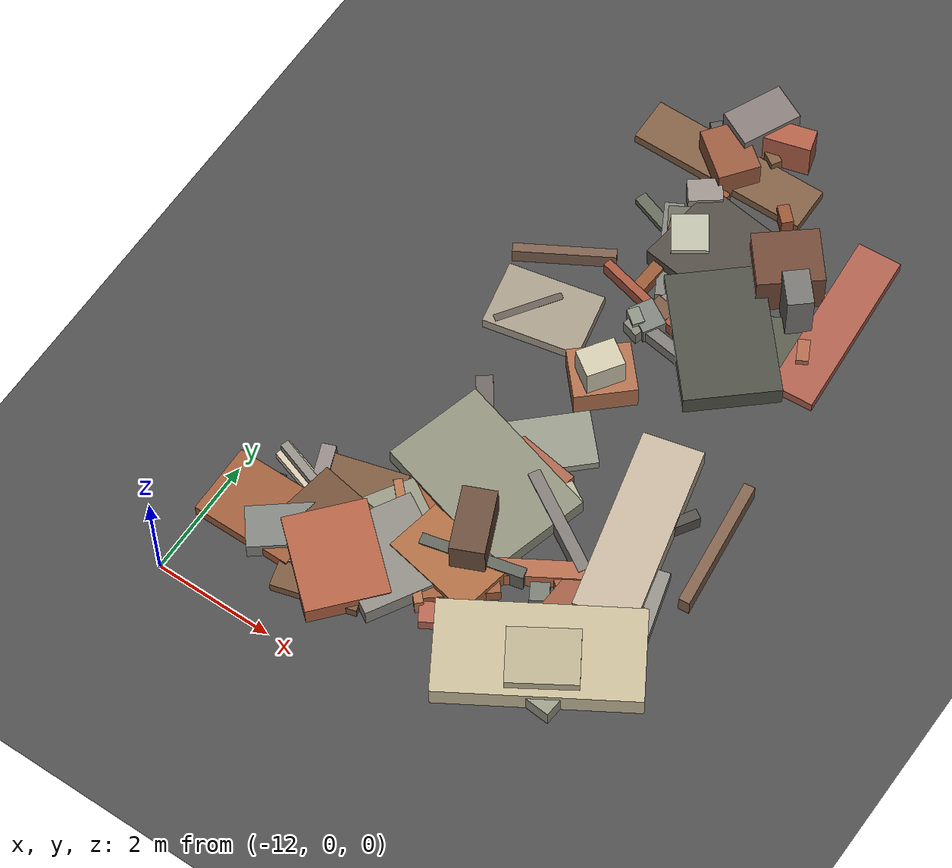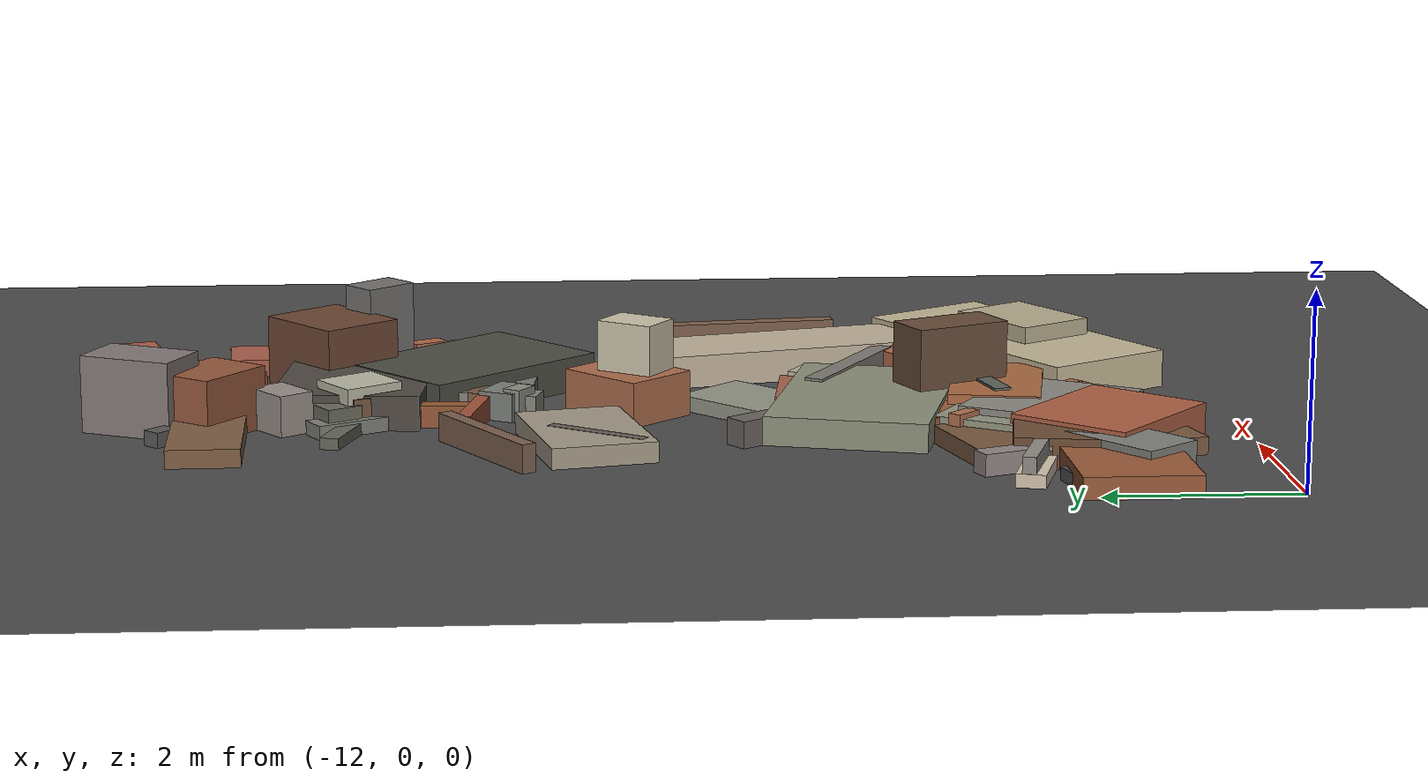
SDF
<sdf version="1.6">
 <world name="navitas_arena">
  <model name="ground_plane">
   <static>true</static>
   <link name="link">
    <collision name="collision">
     <geometry><plane><normal>0 0 1</normal><size>400 400</size></plane></geometry>
     <surface><friction><ode><mu>0.800</mu><mu2>0.800</mu2></ode></friction></surface>
    </collision>
    <visual name="visual">
     <cast_shadows>false</cast_shadows>
     <geometry><plane><normal>0 0 1</normal><size>400 400</size></plane></geometry>
     <material>
      <specular>0.04 0.04 0.04 1</specular>
      <script>
       <uri>file://media/materials/scripts/navitas_asphalt.material</uri>
       <name>Navitas/RealArenaAsphalt</name>
      </script>
     </material>
    </visual>
   </link>
  </model>
  <model name="deb_orta_19">
   <static>true</static>
   <pose>-9.008 5.480 0.000 0 0 0</pose>
   <link name="link">
    <collision name="col_0">
     <pose>0.752 0.780 0.506 0.000 0.000 0.974</pose>
     <geometry><box><size>0.635 0.483 1.012</size></box></geometry>
    </collision>
    <visual name="vis_0">
     <pose>0.752 0.780 0.506 0.000 0.000 0.974</pose>
     <geometry><box><size>0.635 0.483 1.012</size></box></geometry>
     <material>
      <ambient>0.74 0.71 0.62 1</ambient>
      <diffuse>0.80 0.77 0.67 1</diffuse>
      <specular>0.05 0.05 0.045 1</specular>
     </material>
    </visual>
    <collision name="col_1">
     <pose>0.733 0.861 0.239 0.000 0.000 0.738</pose>
     <geometry><box><size>1.006 0.848 0.478</size></box></geometry>
    </collision>
    <visual name="vis_1">
     <pose>0.733 0.861 0.239 0.000 0.000 0.738</pose>
     <geometry><box><size>1.006 0.848 0.478</size></box></geometry>
     <material>
      <ambient>0.63 0.39 0.27 1</ambient>
      <diffuse>0.68 0.43 0.30 1</diffuse>
      <specular>0.05 0.05 0.045 1</specular>
     </material>
    </visual>
    <collision name="col_2">
     <pose>0.558 -0.623 0.082 0.000 0.000 0.755</pose>
     <geometry><box><size>1.760 0.915 0.164</size></box></geometry>
    </collision>
    <visual name="vis_2">
     <pose>0.558 -0.623 0.082 0.000 0.000 0.755</pose>
     <geometry><box><size>1.760 0.915 0.164</size></box></geometry>
     <material>
      <ambient>0.53 0.55 0.49 1</ambient>
      <diffuse>0.58 0.59 0.53 1</diffuse>
      <specular>0.05 0.05 0.045 1</specular>
     </material>
    </visual>
    <collision name="col_3">
     <pose>-0.239 -0.874 0.141 0.000 0.000 2.194</pose>
     <geometry><box><size>1.775 0.268 0.282</size></box></geometry>
    </collision>
    <visual name="vis_3">
     <pose>-0.239 -0.874 0.141 0.000 0.000 2.194</pose>
     <geometry><box><size>1.775 0.268 0.282</size></box></geometry>
     <material>
      <ambient>0.39 0.36 0.35 1</ambient>
      <diffuse>0.42 0.39 0.38 1</diffuse>
      <specular>0.05 0.05 0.045 1</specular>
     </material>
    </visual>
   </link>
  </model>
  <model name="deb_orta_51">
   <static>true</static>
   <pose>-6.276 4.330 0.000 0 0 0</pose>
   <link name="link">
    <collision name="col_0">
     <pose>-1.121 -0.431 0.165 0.000 0.000 2.606</pose>
     <geometry><box><size>1.823 0.203 0.331</size></box></geometry>
    </collision>
    <visual name="vis_0">
     <pose>-1.121 -0.431 0.165 0.000 0.000 2.606</pose>
     <geometry><box><size>1.823 0.203 0.331</size></box></geometry>
     <material>
      <ambient>0.47 0.44 0.43 1</ambient>
      <diffuse>0.50 0.48 0.46 1</diffuse>
      <specular>0.05 0.05 0.045 1</specular>
     </material>
    </visual>
    <collision name="col_1">
     <pose>1.047 0.599 0.164 0.000 0.000 1.687</pose>
     <geometry><box><size>2.196 0.181 0.328</size></box></geometry>
    </collision>
    <visual name="vis_1">
     <pose>1.047 0.599 0.164 0.000 0.000 1.687</pose>
     <geometry><box><size>2.196 0.181 0.328</size></box></geometry>
     <material>
      <ambient>0.46 0.35 0.28 1</ambient>
      <diffuse>0.50 0.38 0.30 1</diffuse>
      <specular>0.05 0.05 0.045 1</specular>
     </material>
    </visual>
    <collision name="col_2">
     <pose>-1.238 0.059 0.143 0.000 0.000 1.033</pose>
     <geometry><box><size>0.222 0.396 0.286</size></box></geometry>
    </collision>
    <visual name="vis_2">
     <pose>-1.238 0.059 0.143 0.000 0.000 1.033</pose>
     <geometry><box><size>0.222 0.396 0.286</size></box></geometry>
     <material>
      <ambient>0.65 0.65 0.56 1</ambient>
      <diffuse>0.70 0.70 0.60 1</diffuse>
      <specular>0.05 0.05 0.045 1</specular>
     </material>
    </visual>
    <collision name="col_3">
     <pose>-0.407 0.443 0.108 0.000 0.000 1.665</pose>
     <geometry><box><size>0.428 0.296 0.217</size></box></geometry>
    </collision>
    <visual name="vis_3">
     <pose>-0.407 0.443 0.108 0.000 0.000 1.665</pose>
     <geometry><box><size>0.428 0.296 0.217</size></box></geometry>
     <material>
      <ambient>0.54 0.54 0.47 1</ambient>
      <diffuse>0.58 0.58 0.50 1</diffuse>
      <specular>0.05 0.05 0.045 1</specular>
     </material>
    </visual>
    <collision name="col_4">
     <pose>-0.062 0.146 0.176 0.000 0.000 1.809</pose>
     <geometry><box><size>3.084 0.998 0.352</size></box></geometry>
    </collision>
    <visual name="vis_4">
     <pose>-0.062 0.146 0.176 0.000 0.000 1.809</pose>
     <geometry><box><size>3.084 0.998 0.352</size></box></geometry>
     <material>
      <ambient>0.70 0.65 0.56 1</ambient>
      <diffuse>0.76 0.70 0.61 1</diffuse>
      <specular>0.05 0.05 0.045 1</specular>
     </material>
    </visual>
    <collision name="col_5">
     <pose>0.300 -1.136 0.090 0.000 0.000 0.869</pose>
     <geometry><box><size>0.515 0.389 0.180</size></box></geometry>
    </collision>
    <visual name="vis_5">
     <pose>0.300 -1.136 0.090 0.000 0.000 0.869</pose>
     <geometry><box><size>0.515 0.389 0.180</size></box></geometry>
     <material>
      <ambient>0.30 0.27 0.26 1</ambient>
      <diffuse>0.33 0.29 0.28 1</diffuse>
      <specular>0.05 0.05 0.045 1</specular>
     </material>
    </visual>
    <collision name="col_6">
     <pose>0.147 0.268 0.143 0.000 0.000 1.006</pose>
     <geometry><box><size>1.427 0.173 0.286</size></box></geometry>
    </collision>
    <visual name="vis_6">
     <pose>0.147 0.268 0.143 0.000 0.000 1.006</pose>
     <geometry><box><size>1.427 0.173 0.286</size></box></geometry>
     <material>
      <ambient>0.30 0.28 0.26 1</ambient>
      <diffuse>0.32 0.30 0.28 1</diffuse>
      <specular>0.05 0.05 0.045 1</specular>
     </material>
    </visual>
   </link>
  </model>
  <model name="deb_orta_60">
   <static>true</static>
   <pose>-8.436 10.395 0.000 0 0 0</pose>
   <link name="link">
    <collision name="col_0">
     <pose>0.424 -1.190 0.185 0.000 0.000 -0.125</pose>
     <geometry><box><size>1.623 1.555 0.370</size></box></geometry>
    </collision>
    <visual name="vis_0">
     <pose>0.424 -1.190 0.185 0.000 0.000 -0.125</pose>
     <geometry><box><size>1.623 1.555 0.370</size></box></geometry>
     <material>
      <ambient>0.29 0.27 0.25 1</ambient>
      <diffuse>0.32 0.29 0.27 1</diffuse>
      <specular>0.05 0.05 0.045 1</specular>
     </material>
    </visual>
    <collision name="col_1">
     <pose>0.919 -0.050 0.165 0.000 0.000 0.806</pose>
     <geometry><box><size>0.195 0.326 0.330</size></box></geometry>
    </collision>
    <visual name="vis_1">
     <pose>0.919 -0.050 0.165 0.000 0.000 0.806</pose>
     <geometry><box><size>0.195 0.326 0.330</size></box></geometry>
     <material>
      <ambient>0.55 0.31 0.19 1</ambient>
      <diffuse>0.59 0.33 0.20 1</diffuse>
      <specular>0.05 0.05 0.045 1</specular>
     </material>
    </visual>
    <collision name="col_2">
     <pose>-0.539 0.424 0.080 0.000 0.000 -0.784</pose>
     <geometry><box><size>1.200 0.201 0.161</size></box></geometry>
    </collision>
    <visual name="vis_2">
     <pose>-0.539 0.424 0.080 0.000 0.000 -0.784</pose>
     <geometry><box><size>1.200 0.201 0.161</size></box></geometry>
     <material>
      <ambient>0.33 0.32 0.32 1</ambient>
      <diffuse>0.36 0.35 0.35 1</diffuse>
      <specular>0.05 0.05 0.045 1</specular>
     </material>
    </visual>
    <collision name="col_3">
     <pose>-0.327 -0.448 0.216 0.000 0.000 0.641</pose>
     <geometry><box><size>0.556 0.400 0.432</size></box></geometry>
    </collision>
    <visual name="vis_3">
     <pose>-0.327 -0.448 0.216 0.000 0.000 0.641</pose>
     <geometry><box><size>0.556 0.400 0.432</size></box></geometry>
     <material>
      <ambient>0.55 0.52 0.50 1</ambient>
      <diffuse>0.60 0.56 0.54 1</diffuse>
      <specular>0.05 0.05 0.045 1</specular>
     </material>
    </visual>
    <collision name="col_4">
     <pose>-0.359 0.286 0.096 0.000 0.000 0.015</pose>
     <geometry><box><size>3.038 0.751 0.191</size></box></geometry>
    </collision>
    <visual name="vis_4">
     <pose>-0.359 0.286 0.096 0.000 0.000 0.015</pose>
     <geometry><box><size>3.038 0.751 0.191</size></box></geometry>
     <material>
      <ambient>0.47 0.35 0.25 1</ambient>
      <diffuse>0.50 0.37 0.27 1</diffuse>
      <specular>0.05 0.05 0.045 1</specular>
     </material>
    </visual>
    <collision name="col_5">
     <pose>0.190 0.723 0.164 0.000 0.000 1.027</pose>
     <geometry><box><size>0.184 0.260 0.328</size></box></geometry>
    </collision>
    <visual name="vis_5">
     <pose>0.190 0.723 0.164 0.000 0.000 1.027</pose>
     <geometry><box><size>0.184 0.260 0.328</size></box></geometry>
     <material>
      <ambient>0.45 0.34 0.23 1</ambient>
      <diffuse>0.49 0.36 0.25 1</diffuse>
      <specular>0.05 0.05 0.045 1</specular>
     </material>
    </visual>
   </link>
  </model>
  <model name="deb_orta_70">
   <static>true</static>
   <pose>-6.949 2.322 0.000 0 0 0</pose>
   <link name="link">
    <collision name="col_0">
     <pose>0.006 0.902 0.160 0.000 0.000 0.546</pose>
     <geometry><box><size>2.242 0.294 0.320</size></box></geometry>
    </collision>
    <visual name="vis_0">
     <pose>0.006 0.902 0.160 0.000 0.000 0.546</pose>
     <geometry><box><size>2.242 0.294 0.320</size></box></geometry>
     <material>
      <ambient>0.65 0.39 0.28 1</ambient>
      <diffuse>0.70 0.42 0.30 1</diffuse>
      <specular>0.05 0.05 0.045 1</specular>
     </material>
    </visual>
    <collision name="col_1">
     <pose>0.489 0.696 0.104 0.000 0.000 1.872</pose>
     <geometry><box><size>0.409 0.210 0.208</size></box></geometry>
    </collision>
    <visual name="vis_1">
     <pose>0.489 0.696 0.104 0.000 0.000 1.872</pose>
     <geometry><box><size>0.409 0.210 0.208</size></box></geometry>
     <material>
      <ambient>0.61 0.35 0.22 1</ambient>
      <diffuse>0.65 0.38 0.24 1</diffuse>
      <specular>0.05 0.05 0.045 1</specular>
     </material>
    </visual>
    <collision name="col_2">
     <pose>0.934 -0.062 0.161 0.000 0.000 1.492</pose>
     <geometry><box><size>2.135 0.735 0.322</size></box></geometry>
    </collision>
    <visual name="vis_2">
     <pose>0.934 -0.062 0.161 0.000 0.000 1.492</pose>
     <geometry><box><size>2.135 0.735 0.322</size></box></geometry>
     <material>
      <ambient>0.55 0.56 0.49 1</ambient>
      <diffuse>0.60 0.60 0.53 1</diffuse>
      <specular>0.05 0.05 0.045 1</specular>
     </material>
    </visual>
    <collision name="col_3">
     <pose>0.071 0.823 0.135 0.000 0.000 0.898</pose>
     <geometry><box><size>0.195 0.269 0.270</size></box></geometry>
    </collision>
    <visual name="vis_3">
     <pose>0.071 0.823 0.135 0.000 0.000 0.898</pose>
     <geometry><box><size>0.195 0.269 0.270</size></box></geometry>
     <material>
      <ambient>0.61 0.36 0.26 1</ambient>
      <diffuse>0.65 0.39 0.28 1</diffuse>
      <specular>0.05 0.05 0.045 1</specular>
     </material>
    </visual>
    <collision name="col_4">
     <pose>0.688 -0.504 0.294 0.000 0.000 0.562</pose>
     <geometry><box><size>1.128 0.917 0.588</size></box></geometry>
    </collision>
    <visual name="vis_4">
     <pose>0.688 -0.504 0.294 0.000 0.000 0.562</pose>
     <geometry><box><size>1.128 0.917 0.588</size></box></geometry>
     <material>
      <ambient>0.66 0.63 0.52 1</ambient>
      <diffuse>0.72 0.68 0.56 1</diffuse>
      <specular>0.05 0.05 0.045 1</specular>
     </material>
    </visual>
    <collision name="col_5">
     <pose>0.447 0.265 0.095 0.000 0.000 0.921</pose>
     <geometry><box><size>1.011 0.318 0.190</size></box></geometry>
    </collision>
    <visual name="vis_5">
     <pose>0.447 0.265 0.095 0.000 0.000 0.921</pose>
     <geometry><box><size>1.011 0.318 0.190</size></box></geometry>
     <material>
      <ambient>0.76 0.69 0.62 1</ambient>
      <diffuse>0.82 0.74 0.67 1</diffuse>
      <specular>0.05 0.05 0.045 1</specular>
     </material>
    </visual>
   </link>
  </model>
  <model name="deb_orta_114">
   <static>true</static>
   <pose>-8.352 2.006 0.000 0 0 0</pose>
   <link name="link">
    <collision name="col_0">
     <pose>0.166 -0.439 0.114 0.000 0.000 2.095</pose>
     <geometry><box><size>0.344 0.253 0.229</size></box></geometry>
    </collision>
    <visual name="vis_0">
     <pose>0.166 -0.439 0.114 0.000 0.000 2.095</pose>
     <geometry><box><size>0.344 0.253 0.229</size></box></geometry>
     <material>
      <ambient>0.65 0.36 0.29 1</ambient>
      <diffuse>0.70 0.39 0.31 1</diffuse>
      <specular>0.05 0.05 0.045 1</specular>
     </material>
    </visual>
    <collision name="col_1">
     <pose>-0.855 -0.007 0.166 0.000 0.000 1.045</pose>
     <geometry><box><size>1.452 1.559 0.332</size></box></geometry>
    </collision>
    <visual name="vis_1">
     <pose>-0.855 -0.007 0.166 0.000 0.000 1.045</pose>
     <geometry><box><size>1.452 1.559 0.332</size></box></geometry>
     <material>
      <ambient>0.51 0.50 0.47 1</ambient>
      <diffuse>0.55 0.54 0.51 1</diffuse>
      <specular>0.05 0.05 0.045 1</specular>
     </material>
    </visual>
    <collision name="col_2">
     <pose>-0.050 0.443 0.175 0.000 0.000 -0.185</pose>
     <geometry><box><size>1.562 0.960 0.350</size></box></geometry>
    </collision>
    <visual name="vis_2">
     <pose>-0.050 0.443 0.175 0.000 0.000 -0.185</pose>
     <geometry><box><size>1.562 0.960 0.350</size></box></geometry>
     <material>
      <ambient>0.62 0.39 0.24 1</ambient>
      <diffuse>0.67 0.42 0.26 1</diffuse>
      <specular>0.05 0.05 0.045 1</specular>
     </material>
    </visual>
    <collision name="col_3">
     <pose>0.234 0.656 0.187 0.000 0.000 0.238</pose>
     <geometry><box><size>1.679 0.183 0.374</size></box></geometry>
    </collision>
    <visual name="vis_3">
     <pose>0.234 0.656 0.187 0.000 0.000 0.238</pose>
     <geometry><box><size>1.679 0.183 0.374</size></box></geometry>
     <material>
      <ambient>0.35 0.36 0.34 1</ambient>
      <diffuse>0.38 0.39 0.36 1</diffuse>
      <specular>0.05 0.05 0.045 1</specular>
     </material>
    </visual>
   </link>
  </model>
  <model name="deb_orta_139">
   <static>true</static>
   <pose>-6.398 2.438 0.000 0 0 0</pose>
   <link name="link">
    <collision name="col_0">
     <pose>-0.636 0.420 0.077 0.000 0.000 2.101</pose>
     <geometry><box><size>0.386 0.303 0.154</size></box></geometry>
    </collision>
    <visual name="vis_0">
     <pose>-0.636 0.420 0.077 0.000 0.000 2.101</pose>
     <geometry><box><size>0.386 0.303 0.154</size></box></geometry>
     <material>
      <ambient>0.43 0.45 0.41 1</ambient>
      <diffuse>0.46 0.48 0.44 1</diffuse>
      <specular>0.05 0.05 0.045 1</specular>
     </material>
    </visual>
    <collision name="col_1">
     <pose>-0.235 0.621 0.138 0.000 0.000 1.406</pose>
     <geometry><box><size>0.242 0.310 0.276</size></box></geometry>
    </collision>
    <visual name="vis_1">
     <pose>-0.235 0.621 0.138 0.000 0.000 1.406</pose>
     <geometry><box><size>0.242 0.310 0.276</size></box></geometry>
     <material>
      <ambient>0.63 0.40 0.27 1</ambient>
      <diffuse>0.69 0.44 0.30 1</diffuse>
      <specular>0.05 0.05 0.045 1</specular>
     </material>
    </visual>
    <collision name="col_2">
     <pose>1.005 0.794 0.110 0.000 0.000 1.850</pose>
     <geometry><box><size>1.870 0.219 0.220</size></box></geometry>
    </collision>
    <visual name="vis_2">
     <pose>1.005 0.794 0.110 0.000 0.000 1.850</pose>
     <geometry><box><size>1.870 0.219 0.220</size></box></geometry>
     <material>
      <ambient>0.52 0.51 0.48 1</ambient>
      <diffuse>0.56 0.55 0.52 1</diffuse>
      <specular>0.05 0.05 0.045 1</specular>
     </material>
    </visual>
    <collision name="col_3">
     <pose>0.192 0.108 0.144 0.000 0.000 1.524</pose>
     <geometry><box><size>1.838 1.272 0.288</size></box></geometry>
    </collision>
    <visual name="vis_3">
     <pose>0.192 0.108 0.144 0.000 0.000 1.524</pose>
     <geometry><box><size>1.838 1.272 0.288</size></box></geometry>
     <material>
      <ambient>0.57 0.34 0.24 1</ambient>
      <diffuse>0.61 0.36 0.26 1</diffuse>
      <specular>0.05 0.05 0.045 1</specular>
     </material>
    </visual>
    <collision name="col_4">
     <pose>-0.009 -0.503 0.204 0.000 0.000 0.546</pose>
     <geometry><box><size>3.185 1.524 0.407</size></box></geometry>
    </collision>
    <visual name="vis_4">
     <pose>-0.009 -0.503 0.204 0.000 0.000 0.546</pose>
     <geometry><box><size>3.185 1.524 0.407</size></box></geometry>
     <material>
      <ambient>0.71 0.67 0.55 1</ambient>
      <diffuse>0.77 0.72 0.59 1</diffuse>
      <specular>0.05 0.05 0.045 1</specular>
     </material>
    </visual>
   </link>
  </model>
  <model name="deb_orta_141">
   <static>true</static>
   <pose>-6.434 8.853 0.000 0 0 0</pose>
   <link name="link">
    <collision name="col_0">
     <pose>-0.446 0.542 0.151 0.000 0.000 3.110</pose>
     <geometry><box><size>0.470 0.406 0.302</size></box></geometry>
    </collision>
    <visual name="vis_0">
     <pose>-0.446 0.542 0.151 0.000 0.000 3.110</pose>
     <geometry><box><size>0.470 0.406 0.302</size></box></geometry>
     <material>
      <ambient>0.69 0.63 0.58 1</ambient>
      <diffuse>0.74 0.68 0.62 1</diffuse>
      <specular>0.05 0.05 0.045 1</specular>
     </material>
    </visual>
    <collision name="col_1">
     <pose>-0.021 -0.488 0.085 0.000 0.000 3.681</pose>
     <geometry><box><size>1.582 0.935 0.169</size></box></geometry>
    </collision>
    <visual name="vis_1">
     <pose>-0.021 -0.488 0.085 0.000 0.000 3.681</pose>
     <geometry><box><size>1.582 0.935 0.169</size></box></geometry>
     <material>
      <ambient>0.32 0.32 0.27 1</ambient>
      <diffuse>0.34 0.35 0.29 1</diffuse>
      <specular>0.05 0.05 0.045 1</specular>
     </material>
    </visual>
    <collision name="col_2">
     <pose>0.264 0.692 0.084 0.000 0.000 2.875</pose>
     <geometry><box><size>0.181 0.250 0.168</size></box></geometry>
    </collision>
    <visual name="vis_2">
     <pose>0.264 0.692 0.084 0.000 0.000 2.875</pose>
     <geometry><box><size>0.181 0.250 0.168</size></box></geometry>
     <material>
      <ambient>0.63 0.35 0.25 1</ambient>
      <diffuse>0.69 0.38 0.27 1</diffuse>
      <specular>0.05 0.05 0.045 1</specular>
     </material>
    </visual>
    <collision name="col_3">
     <pose>-0.494 0.618 0.398 0.000 0.000 3.825</pose>
     <geometry><box><size>1.079 0.930 0.796</size></box></geometry>
    </collision>
    <visual name="vis_3">
     <pose>-0.494 0.618 0.398 0.000 0.000 3.825</pose>
     <geometry><box><size>1.079 0.930 0.796</size></box></geometry>
     <material>
      <ambient>0.40 0.26 0.19 1</ambient>
      <diffuse>0.43 0.28 0.21 1</diffuse>
      <specular>0.05 0.05 0.045 1</specular>
     </material>
    </visual>
    <collision name="col_4">
     <pose>0.001 0.115 0.532 0.000 0.000 2.281</pose>
     <geometry><box><size>0.608 0.419 1.064</size></box></geometry>
    </collision>
    <visual name="vis_4">
     <pose>0.001 0.115 0.532 0.000 0.000 2.281</pose>
     <geometry><box><size>0.608 0.419 1.064</size></box></geometry>
     <material>
      <ambient>0.43 0.42 0.41 1</ambient>
      <diffuse>0.46 0.45 0.44 1</diffuse>
      <specular>0.05 0.05 0.045 1</specular>
     </material>
    </visual>
    <collision name="col_5">
     <pose>0.599 0.342 0.096 0.000 0.000 1.643</pose>
     <geometry><box><size>2.895 0.735 0.193</size></box></geometry>
    </collision>
    <visual name="vis_5">
     <pose>0.599 0.342 0.096 0.000 0.000 1.643</pose>
     <geometry><box><size>2.895 0.735 0.193</size></box></geometry>
     <material>
      <ambient>0.62 0.35 0.27 1</ambient>
      <diffuse>0.67 0.37 0.30 1</diffuse>
      <specular>0.05 0.05 0.045 1</specular>
     </material>
    </visual>
    <collision name="col_6">
     <pose>0.468 -0.396 0.155 0.000 0.000 3.625</pose>
     <geometry><box><size>0.195 0.378 0.309</size></box></geometry>
    </collision>
    <visual name="vis_6">
     <pose>0.468 -0.396 0.155 0.000 0.000 3.625</pose>
     <geometry><box><size>0.195 0.378 0.309</size></box></geometry>
     <material>
      <ambient>0.63 0.38 0.28 1</ambient>
      <diffuse>0.68 0.41 0.30 1</diffuse>
      <specular>0.05 0.05 0.045 1</specular>
     </material>
    </visual>
   </link>
  </model>
  <model name="deb_orta_142">
   <static>true</static>
   <pose>-9.919 1.536 0.000 0 0 0</pose>
   <link name="link">
    <collision name="col_0">
     <pose>-0.148 0.423 0.094 0.000 0.000 1.847</pose>
     <geometry><box><size>2.404 1.385 0.188</size></box></geometry>
    </collision>
    <visual name="vis_0">
     <pose>-0.148 0.423 0.094 0.000 0.000 1.847</pose>
     <geometry><box><size>2.404 1.385 0.188</size></box></geometry>
     <material>
      <ambient>0.44 0.33 0.23 1</ambient>
      <diffuse>0.48 0.35 0.25 1</diffuse>
      <specular>0.05 0.05 0.045 1</specular>
     </material>
    </visual>
    <collision name="col_1">
     <pose>-0.608 0.168 0.155 0.000 0.000 3.810</pose>
     <geometry><box><size>1.811 0.697 0.310</size></box></geometry>
    </collision>
    <visual name="vis_1">
     <pose>-0.608 0.168 0.155 0.000 0.000 3.810</pose>
     <geometry><box><size>1.811 0.697 0.310</size></box></geometry>
     <material>
      <ambient>0.46 0.47 0.45 1</ambient>
      <diffuse>0.50 0.51 0.49 1</diffuse>
      <specular>0.05 0.05 0.045 1</specular>
     </material>
    </visual>
    <collision name="col_2">
     <pose>0.099 -0.018 0.179 0.000 0.000 2.424</pose>
     <geometry><box><size>1.631 1.330 0.357</size></box></geometry>
    </collision>
    <visual name="vis_2">
     <pose>0.099 -0.018 0.179 0.000 0.000 2.424</pose>
     <geometry><box><size>1.631 1.330 0.357</size></box></geometry>
     <material>
      <ambient>0.64 0.35 0.25 1</ambient>
      <diffuse>0.69 0.38 0.27 1</diffuse>
      <specular>0.05 0.05 0.045 1</specular>
     </material>
    </visual>
    <collision name="col_3">
     <pose>0.656 0.822 0.130 0.000 0.000 2.586</pose>
     <geometry><box><size>1.622 1.186 0.259</size></box></geometry>
    </collision>
    <visual name="vis_3">
     <pose>0.656 0.822 0.130 0.000 0.000 2.586</pose>
     <geometry><box><size>1.622 1.186 0.259</size></box></geometry>
     <material>
      <ambient>0.54 0.54 0.47 1</ambient>
      <diffuse>0.58 0.58 0.51 1</diffuse>
      <specular>0.05 0.05 0.045 1</specular>
     </material>
    </visual>
    <collision name="col_4">
     <pose>0.841 0.807 0.158 0.000 0.000 2.339</pose>
     <geometry><box><size>2.108 0.142 0.315</size></box></geometry>
    </collision>
    <visual name="vis_4">
     <pose>0.841 0.807 0.158 0.000 0.000 2.339</pose>
     <geometry><box><size>2.108 0.142 0.315</size></box></geometry>
     <material>
      <ambient>0.65 0.42 0.29 1</ambient>
      <diffuse>0.70 0.45 0.31 1</diffuse>
      <specular>0.05 0.05 0.045 1</specular>
     </material>
    </visual>
    <collision name="col_5">
     <pose>-0.749 0.536 0.114 0.000 0.000 1.944</pose>
     <geometry><box><size>2.053 0.234 0.228</size></box></geometry>
    </collision>
    <visual name="vis_5">
     <pose>-0.749 0.536 0.114 0.000 0.000 1.944</pose>
     <geometry><box><size>2.053 0.234 0.228</size></box></geometry>
     <material>
      <ambient>0.52 0.50 0.48 1</ambient>
      <diffuse>0.57 0.53 0.52 1</diffuse>
      <specular>0.05 0.05 0.045 1</specular>
     </material>
    </visual>
   </link>
  </model>
  <model name="deb_orta_155">
   <static>true</static>
   <pose>-8.483 3.498 0.000 0 0 0</pose>
   <link name="link">
    <collision name="col_0">
     <pose>0.203 -0.569 0.478 0.000 0.000 1.987</pose>
     <geometry><box><size>1.067 0.551 0.955</size></box></geometry>
    </collision>
    <visual name="vis_0">
     <pose>0.203 -0.569 0.478 0.000 0.000 1.987</pose>
     <geometry><box><size>1.067 0.551 0.955</size></box></geometry>
     <material>
      <ambient>0.38 0.27 0.21 1</ambient>
      <diffuse>0.41 0.30 0.23 1</diffuse>
      <specular>0.05 0.05 0.045 1</specular>
     </material>
    </visual>
    <collision name="col_1">
     <pose>-0.252 0.394 0.151 0.000 0.000 -0.270</pose>
     <geometry><box><size>2.547 1.693 0.302</size></box></geometry>
    </collision>
    <visual name="vis_1">
     <pose>-0.252 0.394 0.151 0.000 0.000 -0.270</pose>
     <geometry><box><size>2.547 1.693 0.302</size></box></geometry>
     <material>
      <ambient>0.51 0.51 0.45 1</ambient>
      <diffuse>0.55 0.56 0.48 1</diffuse>
      <specular>0.05 0.05 0.045 1</specular>
     </material>
    </visual>
    <collision name="col_2">
     <pose>-0.445 -0.304 0.066 0.000 0.000 0.415</pose>
     <geometry><box><size>1.003 0.298 0.133</size></box></geometry>
    </collision>
    <visual name="vis_2">
     <pose>-0.445 -0.304 0.066 0.000 0.000 0.415</pose>
     <geometry><box><size>1.003 0.298 0.133</size></box></geometry>
     <material>
      <ambient>0.37 0.28 0.17 1</ambient>
      <diffuse>0.40 0.30 0.18 1</diffuse>
      <specular>0.05 0.05 0.045 1</specular>
     </material>
    </visual>
    <collision name="col_3">
     <pose>0.144 0.071 0.124 0.000 0.000 1.425</pose>
     <geometry><box><size>2.383 1.031 0.249</size></box></geometry>
    </collision>
    <visual name="vis_3">
     <pose>0.144 0.071 0.124 0.000 0.000 1.425</pose>
     <geometry><box><size>2.383 1.031 0.249</size></box></geometry>
     <material>
      <ambient>0.60 0.36 0.28 1</ambient>
      <diffuse>0.65 0.39 0.30 1</diffuse>
      <specular>0.05 0.05 0.045 1</specular>
     </material>
    </visual>
    <collision name="col_4">
     <pose>-0.124 -0.607 0.124 0.000 0.000 2.260</pose>
     <geometry><box><size>2.141 1.211 0.248</size></box></geometry>
    </collision>
    <visual name="vis_4">
     <pose>-0.124 -0.607 0.124 0.000 0.000 2.260</pose>
     <geometry><box><size>2.141 1.211 0.248</size></box></geometry>
     <material>
      <ambient>0.57 0.35 0.21 1</ambient>
      <diffuse>0.62 0.37 0.23 1</diffuse>
      <specular>0.05 0.05 0.045 1</specular>
     </material>
    </visual>
   </link>
  </model>
  <model name="deb_orta_172">
   <static>true</static>
   <pose>-7.791 8.077 0.000 0 0 0</pose>
   <link name="link">
    <collision name="col_0">
     <pose>0.654 -0.090 0.189 0.000 0.000 2.290</pose>
     <geometry><box><size>2.231 1.544 0.377</size></box></geometry>
    </collision>
    <visual name="vis_0">
     <pose>0.654 -0.090 0.189 0.000 0.000 2.290</pose>
     <geometry><box><size>2.231 1.544 0.377</size></box></geometry>
     <material>
      <ambient>0.28 0.28 0.25 1</ambient>
      <diffuse>0.30 0.31 0.27 1</diffuse>
      <specular>0.05 0.05 0.045 1</specular>
     </material>
    </visual>
    <collision name="col_1">
     <pose>-0.288 0.188 0.130 0.000 0.000 1.264</pose>
     <geometry><box><size>2.082 0.300 0.259</size></box></geometry>
    </collision>
    <visual name="vis_1">
     <pose>-0.288 0.188 0.130 0.000 0.000 1.264</pose>
     <geometry><box><size>2.082 0.300 0.259</size></box></geometry>
     <material>
      <ambient>0.48 0.48 0.45 1</ambient>
      <diffuse>0.52 0.52 0.48 1</diffuse>
      <specular>0.05 0.05 0.045 1</specular>
     </material>
    </visual>
    <collision name="col_2">
     <pose>0.490 -0.562 0.169 0.000 0.000 1.205</pose>
     <geometry><box><size>0.263 0.382 0.338</size></box></geometry>
    </collision>
    <visual name="vis_2">
     <pose>0.490 -0.562 0.169 0.000 0.000 1.205</pose>
     <geometry><box><size>0.263 0.382 0.338</size></box></geometry>
     <material>
      <ambient>0.71 0.65 0.56 1</ambient>
      <diffuse>0.77 0.71 0.61 1</diffuse>
      <specular>0.05 0.05 0.045 1</specular>
     </material>
    </visual>
    <collision name="col_3">
     <pose>-0.493 -0.463 0.151 0.000 0.000 2.617</pose>
     <geometry><box><size>0.497 0.398 0.302</size></box></geometry>
    </collision>
    <visual name="vis_3">
     <pose>-0.493 -0.463 0.151 0.000 0.000 2.617</pose>
     <geometry><box><size>0.497 0.398 0.302</size></box></geometry>
     <material>
      <ambient>0.45 0.46 0.45 1</ambient>
      <diffuse>0.49 0.50 0.48 1</diffuse>
      <specular>0.05 0.05 0.045 1</specular>
     </material>
    </visual>
    <collision name="col_4">
     <pose>-0.402 -0.283 0.133 0.000 0.000 3.003</pose>
     <geometry><box><size>0.371 0.424 0.267</size></box></geometry>
    </collision>
    <visual name="vis_4">
     <pose>-0.402 -0.283 0.133 0.000 0.000 3.003</pose>
     <geometry><box><size>0.371 0.424 0.267</size></box></geometry>
     <material>
      <ambient>0.44 0.32 0.24 1</ambient>
      <diffuse>0.47 0.35 0.26 1</diffuse>
      <specular>0.05 0.05 0.045 1</specular>
     </material>
    </visual>
    <collision name="col_5">
     <pose>-0.528 -0.242 0.129 0.000 0.000 2.913</pose>
     <geometry><box><size>2.117 0.142 0.257</size></box></geometry>
    </collision>
    <visual name="vis_5">
     <pose>-0.528 -0.242 0.129 0.000 0.000 2.913</pose>
     <geometry><box><size>2.117 0.142 0.257</size></box></geometry>
     <material>
      <ambient>0.59 0.30 0.23 1</ambient>
      <diffuse>0.64 0.33 0.24 1</diffuse>
      <specular>0.05 0.05 0.045 1</specular>
     </material>
    </visual>
    <collision name="col_6">
     <pose>0.315 -0.715 0.124 0.000 0.000 3.007</pose>
     <geometry><box><size>1.824 0.198 0.248</size></box></geometry>
    </collision>
    <visual name="vis_6">
     <pose>0.315 -0.715 0.124 0.000 0.000 3.007</pose>
     <geometry><box><size>1.824 0.198 0.248</size></box></geometry>
     <material>
      <ambient>0.45 0.44 0.42 1</ambient>
      <diffuse>0.49 0.48 0.46 1</diffuse>
      <specular>0.05 0.05 0.045 1</specular>
     </material>
    </visual>
   </link>
  </model>
  <model name="deb_orta_208">
   <static>true</static>
   <pose>-8.743 11.285 0.000 0 0 0</pose>
   <link name="link">
    <collision name="col_0">
     <pose>0.406 0.346 0.119 0.000 0.000 0.912</pose>
     <geometry><box><size>0.187 0.417 0.238</size></box></geometry>
    </collision>
    <visual name="vis_0">
     <pose>0.406 0.346 0.119 0.000 0.000 0.912</pose>
     <geometry><box><size>0.187 0.417 0.238</size></box></geometry>
     <material>
      <ambient>0.45 0.32 0.26 1</ambient>
      <diffuse>0.48 0.35 0.28 1</diffuse>
      <specular>0.05 0.05 0.045 1</specular>
     </material>
    </visual>
    <collision name="col_1">
     <pose>0.076 0.115 0.407 0.000 0.000 1.129</pose>
     <geometry><box><size>1.022 0.644 0.814</size></box></geometry>
    </collision>
    <visual name="vis_1">
     <pose>0.076 0.115 0.407 0.000 0.000 1.129</pose>
     <geometry><box><size>1.022 0.644 0.814</size></box></geometry>
     <material>
      <ambient>0.48 0.45 0.43 1</ambient>
      <diffuse>0.52 0.48 0.47 1</diffuse>
      <specular>0.05 0.05 0.045 1</specular>
     </material>
    </visual>
    <collision name="col_2">
     <pose>0.518 0.085 0.364 0.000 0.000 3.418</pose>
     <geometry><box><size>0.979 0.382 0.727</size></box></geometry>
    </collision>
    <visual name="vis_2">
     <pose>0.518 0.085 0.364 0.000 0.000 3.418</pose>
     <geometry><box><size>0.979 0.382 0.727</size></box></geometry>
     <material>
      <ambient>0.63 0.34 0.26 1</ambient>
      <diffuse>0.68 0.37 0.28 1</diffuse>
      <specular>0.05 0.05 0.045 1</specular>
     </material>
    </visual>
    <collision name="col_3">
     <pose>-0.033 -0.614 0.330 0.000 0.000 2.489</pose>
     <geometry><box><size>0.904 0.698 0.660</size></box></geometry>
    </collision>
    <visual name="vis_3">
     <pose>-0.033 -0.614 0.330 0.000 0.000 2.489</pose>
     <geometry><box><size>0.904 0.698 0.660</size></box></geometry>
     <material>
      <ambient>0.54 0.33 0.22 1</ambient>
      <diffuse>0.59 0.35 0.24 1</diffuse>
      <specular>0.05 0.05 0.045 1</specular>
     </material>
    </visual>
   </link>
  </model>
  <model name="deb_orta_229">
   <static>true</static>
   <pose>-9.416 7.488 0.000 0 0 0</pose>
   <link name="link">
    <collision name="col_0">
     <pose>0.994 0.001 0.170 0.000 0.000 0.937</pose>
     <geometry><box><size>0.199 0.285 0.340</size></box></geometry>
    </collision>
    <visual name="vis_0">
     <pose>0.994 0.001 0.170 0.000 0.000 0.937</pose>
     <geometry><box><size>0.199 0.285 0.340</size></box></geometry>
     <material>
      <ambient>0.50 0.52 0.47 1</ambient>
      <diffuse>0.54 0.56 0.51 1</diffuse>
      <specular>0.05 0.05 0.045 1</specular>
     </material>
    </visual>
    <collision name="col_1">
     <pose>-0.500 -0.757 0.110 0.000 0.000 0.965</pose>
     <geometry><box><size>1.130 0.122 0.221</size></box></geometry>
    </collision>
    <visual name="vis_1">
     <pose>-0.500 -0.757 0.110 0.000 0.000 0.965</pose>
     <geometry><box><size>1.130 0.122 0.221</size></box></geometry>
     <material>
      <ambient>0.37 0.34 0.32 1</ambient>
      <diffuse>0.40 0.37 0.34 1</diffuse>
      <specular>0.05 0.05 0.045 1</specular>
     </material>
    </visual>
    <collision name="col_2">
     <pose>-0.585 0.366 0.149 0.000 0.000 0.528</pose>
     <geometry><box><size>1.634 0.154 0.297</size></box></geometry>
    </collision>
    <visual name="vis_2">
     <pose>-0.585 0.366 0.149 0.000 0.000 0.528</pose>
     <geometry><box><size>1.634 0.154 0.297</size></box></geometry>
     <material>
      <ambient>0.44 0.34 0.28 1</ambient>
      <diffuse>0.48 0.37 0.30 1</diffuse>
      <specular>0.05 0.05 0.045 1</specular>
     </material>
    </visual>
    <collision name="col_3">
     <pose>-0.287 -0.645 0.109 0.000 0.000 0.209</pose>
     <geometry><box><size>1.603 1.098 0.217</size></box></geometry>
    </collision>
    <visual name="vis_3">
     <pose>-0.287 -0.645 0.109 0.000 0.000 0.209</pose>
     <geometry><box><size>1.603 1.098 0.217</size></box></geometry>
     <material>
      <ambient>0.59 0.56 0.49 1</ambient>
      <diffuse>0.64 0.60 0.53 1</diffuse>
      <specular>0.05 0.05 0.045 1</specular>
     </material>
    </visual>
   </link>
  </model>
  <model name="deb_orta_269">
   <static>true</static>
   <pose>-10.678 1.681 0.000 0 0 0</pose>
   <link name="link">
    <collision name="col_0">
     <pose>-0.338 0.748 0.070 0.000 0.000 2.837</pose>
     <geometry><box><size>1.240 0.300 0.139</size></box></geometry>
    </collision>
    <visual name="vis_0">
     <pose>-0.338 0.748 0.070 0.000 0.000 2.837</pose>
     <geometry><box><size>1.240 0.300 0.139</size></box></geometry>
     <material>
      <ambient>0.77 0.72 0.63 1</ambient>
      <diffuse>0.83 0.77 0.68 1</diffuse>
      <specular>0.05 0.05 0.045 1</specular>
     </material>
    </visual>
    <collision name="col_1">
     <pose>-0.716 0.392 0.067 0.000 0.000 1.828</pose>
     <geometry><box><size>0.339 0.288 0.134</size></box></geometry>
    </collision>
    <visual name="vis_1">
     <pose>-0.716 0.392 0.067 0.000 0.000 1.828</pose>
     <geometry><box><size>0.339 0.288 0.134</size></box></geometry>
     <material>
      <ambient>0.29 0.30 0.29 1</ambient>
      <diffuse>0.31 0.32 0.31 1</diffuse>
      <specular>0.05 0.05 0.045 1</specular>
     </material>
    </visual>
    <collision name="col_2">
     <pose>0.588 0.399 0.155 0.000 0.000 2.981</pose>
     <geometry><box><size>1.615 0.915 0.310</size></box></geometry>
    </collision>
    <visual name="vis_2">
     <pose>0.588 0.399 0.155 0.000 0.000 2.981</pose>
     <geometry><box><size>1.615 0.915 0.310</size></box></geometry>
     <material>
      <ambient>0.41 0.28 0.20 1</ambient>
      <diffuse>0.44 0.31 0.22 1</diffuse>
      <specular>0.05 0.05 0.045 1</specular>
     </material>
    </visual>
    <collision name="col_3">
     <pose>-0.217 0.716 0.154 0.000 0.000 2.818</pose>
     <geometry><box><size>1.470 0.141 0.309</size></box></geometry>
    </collision>
    <visual name="vis_3">
     <pose>-0.217 0.716 0.154 0.000 0.000 2.818</pose>
     <geometry><box><size>1.470 0.141 0.309</size></box></geometry>
     <material>
      <ambient>0.53 0.51 0.48 1</ambient>
      <diffuse>0.57 0.55 0.52 1</diffuse>
      <specular>0.05 0.05 0.045 1</specular>
     </material>
    </visual>
    <collision name="col_4">
     <pose>0.412 0.065 0.135 0.000 0.000 3.710</pose>
     <geometry><box><size>1.526 0.313 0.270</size></box></geometry>
    </collision>
    <visual name="vis_4">
     <pose>0.412 0.065 0.135 0.000 0.000 3.710</pose>
     <geometry><box><size>1.526 0.313 0.270</size></box></geometry>
     <material>
      <ambient>0.64 0.40 0.27 1</ambient>
      <diffuse>0.69 0.44 0.30 1</diffuse>
      <specular>0.05 0.05 0.045 1</specular>
     </material>
    </visual>
    <collision name="col_5">
     <pose>-0.563 -0.070 0.115 0.000 0.000 3.149</pose>
     <geometry><box><size>1.694 1.189 0.229</size></box></geometry>
    </collision>
    <visual name="vis_5">
     <pose>-0.563 -0.070 0.115 0.000 0.000 3.149</pose>
     <geometry><box><size>1.694 1.189 0.229</size></box></geometry>
     <material>
      <ambient>0.56 0.33 0.21 1</ambient>
      <diffuse>0.61 0.36 0.23 1</diffuse>
      <specular>0.05 0.05 0.045 1</specular>
     </material>
    </visual>
   </link>
  </model>
  <model name="deb_orta_278">
   <static>true</static>
   <pose>-8.470 9.399 0.000 0 0 0</pose>
   <link name="link">
    <collision name="col_0">
     <pose>-0.261 -0.266 0.060 0.000 0.000 2.820</pose>
     <geometry><box><size>1.908 0.200 0.121</size></box></geometry>
    </collision>
    <visual name="vis_0">
     <pose>-0.261 -0.266 0.060 0.000 0.000 2.820</pose>
     <geometry><box><size>1.908 0.200 0.121</size></box></geometry>
     <material>
      <ambient>0.36 0.38 0.33 1</ambient>
      <diffuse>0.39 0.41 0.35 1</diffuse>
      <specular>0.05 0.05 0.045 1</specular>
     </material>
    </visual>
    <collision name="col_1">
     <pose>-0.227 -0.267 0.172 0.000 0.000 0.407</pose>
     <geometry><box><size>0.372 0.306 0.344</size></box></geometry>
    </collision>
    <visual name="vis_1">
     <pose>-0.227 -0.267 0.172 0.000 0.000 0.407</pose>
     <geometry><box><size>0.372 0.306 0.344</size></box></geometry>
     <material>
      <ambient>0.44 0.31 0.24 1</ambient>
      <diffuse>0.47 0.34 0.26 1</diffuse>
      <specular>0.05 0.05 0.045 1</specular>
     </material>
    </visual>
    <collision name="col_2">
     <pose>-0.050 -0.251 0.230 0.000 0.000 2.157</pose>
     <geometry><box><size>0.660 0.598 0.460</size></box></geometry>
    </collision>
    <visual name="vis_2">
     <pose>-0.050 -0.251 0.230 0.000 0.000 2.157</pose>
     <geometry><box><size>0.660 0.598 0.460</size></box></geometry>
     <material>
      <ambient>0.67 0.68 0.60 1</ambient>
      <diffuse>0.73 0.73 0.65 1</diffuse>
      <specular>0.05 0.05 0.045 1</specular>
     </material>
    </visual>
    <collision name="col_3">
     <pose>-0.162 -0.336 0.119 0.000 0.000 1.504</pose>
     <geometry><box><size>2.308 0.207 0.238</size></box></geometry>
    </collision>
    <visual name="vis_3">
     <pose>-0.162 -0.336 0.119 0.000 0.000 1.504</pose>
     <geometry><box><size>2.308 0.207 0.238</size></box></geometry>
     <material>
      <ambient>0.54 0.33 0.19 1</ambient>
      <diffuse>0.58 0.35 0.21 1</diffuse>
      <specular>0.05 0.05 0.045 1</specular>
     </material>
    </visual>
    <collision name="col_4">
     <pose>-0.236 0.556 0.098 0.000 0.000 0.739</pose>
     <geometry><box><size>0.495 0.284 0.196</size></box></geometry>
    </collision>
    <visual name="vis_4">
     <pose>-0.236 0.556 0.098 0.000 0.000 0.739</pose>
     <geometry><box><size>0.495 0.284 0.196</size></box></geometry>
     <material>
      <ambient>0.67 0.65 0.54 1</ambient>
      <diffuse>0.73 0.70 0.58 1</diffuse>
      <specular>0.05 0.05 0.045 1</specular>
     </material>
    </visual>
    <collision name="col_5">
     <pose>-0.241 -0.521 0.075 0.000 0.000 2.065</pose>
     <geometry><box><size>1.685 0.312 0.150</size></box></geometry>
    </collision>
    <visual name="vis_5">
     <pose>-0.241 -0.521 0.075 0.000 0.000 2.065</pose>
     <geometry><box><size>1.685 0.312 0.150</size></box></geometry>
     <material>
      <ambient>0.46 0.46 0.44 1</ambient>
      <diffuse>0.50 0.50 0.47 1</diffuse>
      <specular>0.05 0.05 0.045 1</specular>
     </material>
    </visual>
    <collision name="col_6">
     <pose>-0.355 0.002 0.143 0.000 0.000 2.108</pose>
     <geometry><box><size>0.393 0.454 0.286</size></box></geometry>
    </collision>
    <visual name="vis_6">
     <pose>-0.355 0.002 0.143 0.000 0.000 2.108</pose>
     <geometry><box><size>0.393 0.454 0.286</size></box></geometry>
     <material>
      <ambient>0.39 0.39 0.34 1</ambient>
      <diffuse>0.42 0.42 0.37 1</diffuse>
      <specular>0.05 0.05 0.045 1</specular>
     </material>
    </visual>
   </link>
  </model>
 </world>
</sdf>
